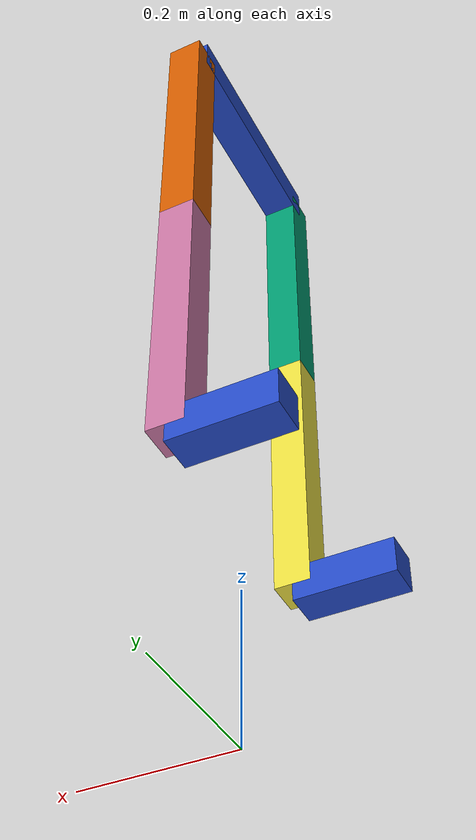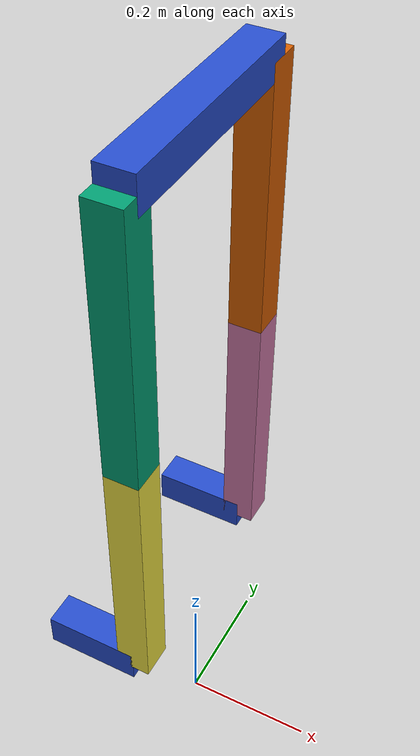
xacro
<?xml version="1.0"?>
<!-- Revolute-Revolute Manipulator -->
<robot name="march" xmlns:xacro="http://www.ros.org/wiki/xacro">
    <!-- An argument that makes sure the march.gazebo is loaded only when launching the simulation and not during build,
            because during build the march_description package can not be found-->
    <xacro:arg name="build" default="false"/>
    <!-- Switch between airgaiting or standing on the ground-->
    <!--Value set to: 'world' fixes the robot to the world-->
    <!--Value set to: 'base_link' makes the robot stand on the ground-->
    <!--Important note: when changing value make sure rviz fixed frame is set to the same value (moveit.rviz)-->
    <xacro:property name="parent_name" value="world"/>

    <!-- Constants for robot dimensions -->
    <xacro:property name="PI" value="3.1415926535897931"/>
    <xacro:property name="mass" value="1"/> <!-- arbitrary value for mass -->
    <xacro:property name="width" value="0.05"/> <!-- Square dimensions (widthxwidth) of beams -->

    <xacro:property name="upper_leg_height" value="${0.39}"/>
    <xacro:property name="upper_leg_mass" value="1.080"/>

    <xacro:property name="lower_leg_height" value="${0.39}"/>
    <xacro:property name="lower_leg_mass" value="1.133"/>

    <xacro:property name="foot_height" value="${0.14*1}"/>
    <xacro:property name="foot_mass" value="0.393"/>

    <xacro:property name="hip_height" value="0.33"/>

    <xacro:property name="hip_rotation_lower_limit" value="${-15*pi/180}"/> <!-- rad -->
    <xacro:property name="hip_rotation_upper_limit" value="${105*pi/180}"/> <!-- rad -->
    <xacro:property name="hip_effort_limit" value="1000.0"/> <!-- Rad -->
    <xacro:property name="hip_velocity_limit" value="1000.0"/> <!-- rad/s -->

    <xacro:property name="knee_rotation_lower_limit" value="${-15*pi/180}"/>
    <xacro:property name="knee_rotation_upper_limit" value="${105*pi/180}"/>
    <xacro:property name="knee_effort_limit" value="1000.0"/>
    <xacro:property name="knee_velocity_limit" value="1000.0"/>

    <xacro:property name="ankle_rotation_lower_limit" value="${-15*pi/180}"/>
    <xacro:property name="ankle_rotation_upper_limit" value="${20*pi/180}"/>
    <xacro:property name="ankle_effort_limit" value="1000.0"/>
    <xacro:property name="ankle_velocity_limit" value="1000.0"/>

    <xacro:property name="hover_height" value="0.3"/>

    <xacro:property name="camera_link" value="0.05"/> <!-- Size of square 'camera' box -->
    <xacro:property name="axel_offset" value="0.05"/> <!-- Space btw top of beam and the each joint -->

    <!-- Import all Gazebo-customization elements, including Gazebo colors -->
    <xacro:unless value="$(arg build)">
        <xacro:include filename="$(find march_description)/urdf/march.gazebo"/>
    </xacro:unless>

    <plugin name="gazebo_ros_control" filename="libgazebo_ros_control.so">
        <robotNamespace>/march</robotNamespace>
    </plugin>

    <!-- Used for fixing robot to Gazebo 'base_link' -->
    <link name="${parent_name}"/>

    <joint name="hip" type="fixed">
        <parent link="${parent_name}"/>
        <child link="hip_bone"/>
        <origin xyz="0 0 ${lower_leg_height+upper_leg_height+hover_height}" rpy="0 0 0"/>
    </joint>

    <joint name="left_hip" type="revolute">
        <parent link="hip_bone"/>
        <child link="upper_leg_left"/>
        <origin xyz="0 ${-hip_height/2} 0" rpy="0 0 0"/>
        <axis xyz="0 1 0"/>
        <limit velocity="${hip_velocity_limit}" effort="${hip_effort_limit}" lower="${hip_rotation_lower_limit}" upper="${hip_rotation_upper_limit}"/>
    </joint>

    <joint name="left_knee" type="revolute">
        <parent link="upper_leg_left"/>
        <child link="lower_leg_left"/>
        <origin xyz="0 0 ${-upper_leg_height}" rpy="0 0 0"/>
        <axis xyz="0 -1 0"/>
        <limit velocity="${knee_velocity_limit}" effort="${knee_effort_limit}" lower="${knee_rotation_lower_limit}" upper="${knee_rotation_upper_limit}"/>
    </joint>

    <joint name="left_ankle" type="revolute">
        <parent link="lower_leg_left"/>
        <child link="foot_left"/>
        <origin xyz="0 0 ${-lower_leg_height}" rpy="0 0 0"/>
        <axis xyz="0 1 0"/>
        <limit velocity="${ankle_velocity_limit}" effort="${ankle_effort_limit}" lower="${ankle_rotation_lower_limit}" upper="${ankle_rotation_upper_limit}"/>
    </joint>

    <joint name="right_hip" type="revolute">
        <parent link="hip_bone"/>
        <child link="upper_leg_right"/>
        <origin xyz="0 ${hip_height/2} 0" rpy="0 0 0"/>
        <axis xyz="0 1 0"/>
        <limit velocity="${hip_velocity_limit}" effort="${hip_effort_limit}" lower="${hip_rotation_lower_limit}" upper="${hip_rotation_upper_limit}"/>
    </joint>

    <joint name="right_knee" type="revolute">
        <parent link="upper_leg_right"/>
        <child link="lower_leg_right"/>
        <origin xyz="0 0 ${-upper_leg_height}" rpy="0 0 0"/>
        <axis xyz="0 -1 0"/>
        <limit velocity="${knee_velocity_limit}" effort="${knee_effort_limit}" lower="${knee_rotation_lower_limit}" upper="${knee_rotation_upper_limit}"/>
    </joint>

    <joint name="right_ankle" type="revolute">
        <parent link="lower_leg_right"/>
        <child link="foot_right"/>
        <origin xyz="0 0 ${-lower_leg_height}" rpy="0 0 0"/>
        <axis xyz="0 1 0"/>
        <limit velocity="${ankle_velocity_limit}" effort="${ankle_effort_limit}" lower="${ankle_rotation_lower_limit}" upper="${ankle_rotation_upper_limit}"/>
    </joint>

    <!-- give colors to some links in gazebo -->
    <gazebo reference="hip_bone">
        <material>Gazebo/Blue</material>
    </gazebo>
    <gazebo reference="foot_left">
        <material>Gazebo/Blue</material>
    </gazebo>
    <gazebo reference="foot_right">
        <material>Gazebo/Blue</material>
    </gazebo>

    <!-- Hip-->
    <link name="hip_bone">
        <visual>
            <origin xyz="0 0 0" rpy="0 0 0"/>
            <geometry>
                <box size="${width} ${hip_height} ${width}"/>
            </geometry>
        </visual>

        <inertial>
            <origin xyz="0 0 0" rpy="0 0 0"/>
            <mass value="${mass}"/>
            <inertia
                    ixx="${mass / 12.0 * (width*width + lower_leg_height*lower_leg_height)}" ixy="0.0" ixz="0.0"
                    iyy="${mass / 12.0 * (lower_leg_height*lower_leg_height + width*width)}" iyz="0.0"
                    izz="${mass / 12.0 * (width*width + width*width)}"/>
        </inertial>
    </link>

    <!-- Upper Leg Left-->
    <link name="upper_leg_left">
        <visual>
            <origin xyz="0 0 ${-upper_leg_height/2}" rpy="0 0 0"/>
            <geometry>
                <box size="${width} ${width} ${upper_leg_height}"/>
            </geometry>
        </visual>

        <inertial>
            <origin xyz="0 0 ${-upper_leg_height/2}" rpy="0 0 0"/>
            <mass value="${upper_leg_mass}"/>
            <inertia
                    ixx="${mass / 12.0 * (width*width + upper_leg_height*upper_leg_height)}" ixy="0.0" ixz="0.0"
                    iyy="${mass / 12.0 * (upper_leg_height*upper_leg_height + width*width)}" iyz="0.0"
                    izz="${mass / 12.0 * (width*width + width*width)}"/>
        </inertial>
    </link>

    <!-- Lower Leg Left -->
    <link name="lower_leg_left">
        <visual>
            <origin xyz="0 0 ${-lower_leg_height/2}" rpy="0 0 0"/>
            <geometry>
                <box size="${width} ${width} ${lower_leg_height}"/>
            </geometry>
        </visual>

        <inertial>
            <origin xyz="0 0 ${-lower_leg_height/2}" rpy="0 0 0"/>
            <mass value="${lower_leg_mass}"/>
            <inertia
                    ixx="${mass / 12.0 * (width*width + lower_leg_height*lower_leg_height)}" ixy="0.0" ixz="0.0"
                    iyy="${mass / 12.0 * (lower_leg_height*lower_leg_height + width*width)}" iyz="0.0"
                    izz="${mass / 12.0 * (width*width + width*width)}"/>
        </inertial>
    </link>

    <!-- Foot Left -->
    <link name="foot_left">
        <visual>
            <origin xyz="${-foot_height/2} 0 0" rpy="0 0 0"/>
            <geometry>
                <box size="${foot_height} ${width} ${width}"/>
            </geometry>
        </visual>

        <inertial>
            <origin xyz="${-foot_height/2} 0 0" rpy="0 0 0"/>
            <mass value="${foot_mass}"/>
            <inertia
                    ixx="${mass / 12.0 * (width*width + lower_leg_height*lower_leg_height)}" ixy="0.0" ixz="0.0"
                    iyy="${mass / 12.0 * (lower_leg_height*lower_leg_height + width*width)}" iyz="0.0"
                    izz="${mass / 12.0 * (width*width + width*width)}"/>
        </inertial>
        <collision>
            <geometry>
                <box size="${foot_height} ${width} ${width}"/>
            </geometry>
        </collision>
    </link>

    <!-- Upper Leg Right-->
    <link name="upper_leg_right">
        <visual>
            <origin xyz="0 0 ${-upper_leg_height/2}" rpy="0 0 0"/>
            <geometry>
                <box size="${width} ${width} ${upper_leg_height}"/>
            </geometry>
        </visual>

        <inertial>
            <origin xyz="0 0 ${-upper_leg_height/2}" rpy="0 0 0"/>
            <mass value="${upper_leg_mass}"/>
            <inertia
                    ixx="${mass / 12.0 * (width*width + upper_leg_height*upper_leg_height)}" ixy="0.0" ixz="0.0"
                    iyy="${mass / 12.0 * (upper_leg_height*upper_leg_height + width*width)}" iyz="0.0"
                    izz="${mass / 12.0 * (width*width + width*width)}"/>
        </inertial>
    </link>

    <!-- Lower Leg Right -->
    <link name="lower_leg_right">
        <visual>
            <origin xyz="0 0 ${-lower_leg_height/2}" rpy="0 0 0"/>
            <geometry>
                <box size="${width} ${width} ${lower_leg_height}"/>
            </geometry>
        </visual>

        <inertial>
            <origin xyz="0 0 ${-lower_leg_height/2}" rpy="0 0 0"/>
            <mass value="${lower_leg_mass}"/>
            <inertia
                    ixx="${mass / 12.0 * (width*width + lower_leg_height*lower_leg_height)}" ixy="0.0" ixz="0.0"
                    iyy="${mass / 12.0 * (lower_leg_height*lower_leg_height + width*width)}" iyz="0.0"
                    izz="${mass / 12.0 * (width*width + width*width)}"/>
        </inertial>
    </link>

    <!-- Foot Right -->
    <link name="foot_right">
        <visual>
            <origin xyz="${-foot_height/2} 0 0" rpy="0 0 0"/>
            <geometry>
                <box size="${foot_height} ${width} ${width}"/>
            </geometry>
        </visual>

        <inertial>
            <origin xyz="${-foot_height/2} 0 0" rpy="0 0 0"/>
            <mass value="${mass}"/>
            <inertia
                    ixx="${mass / 12.0 * (width*width + lower_leg_height*lower_leg_height)}" ixy="0.0" ixz="0.0"
                    iyy="${mass / 12.0 * (lower_leg_height*lower_leg_height + width*width)}" iyz="0.0"
                    izz="${mass / 12.0 * (width*width + width*width)}"/>
        </inertial>
        <collision>
            <geometry>
                <box size="${foot_height} ${width} ${width}"/>
            </geometry>
        </collision>
    </link>

    <!-- ROS Control plugin for Gazebo -->
    <transmission name="left_hip">
        <type>transmission_interface/SimpleTransmission</type>
        <joint name="left_hip">
            <hardwareInterface>hardware_interface/EffortJointInterface</hardwareInterface>
        </joint>
        <actuator name="left_hip_motor">
            <hardwareInterface>hardware_interface/EffortJointInterface</hardwareInterface>
            <mechanicalReduction>1</mechanicalReduction>
        </actuator>
    </transmission>

    <transmission name="left_knee">
        <type>transmission_interface/SimpleTransmission</type>
        <joint name="left_knee">
            <hardwareInterface>hardware_interface/EffortJointInterface</hardwareInterface>
        </joint>
        <actuator name="left_knee_motor">
            <hardwareInterface>hardware_interface/EffortJointInterface</hardwareInterface>
            <mechanicalReduction>1</mechanicalReduction>
        </actuator>
    </transmission>

    <transmission name="left_ankle">
        <type>transmission_interface/SimpleTransmission</type>
        <joint name="left_ankle">
            <hardwareInterface>hardware_interface/EffortJointInterface</hardwareInterface>
        </joint>
        <actuator name="left_ankle_motor">
            <hardwareInterface>hardware_interface/EffortJointInterface</hardwareInterface>
            <mechanicalReduction>1</mechanicalReduction>
        </actuator>
    </transmission>

    <transmission name="right_hip">
        <type>transmission_interface/SimpleTransmission</type>
        <joint name="right_hip">
            <hardwareInterface>hardware_interface/EffortJointInterface</hardwareInterface>
        </joint>
        <actuator name="right_hip_motor">
            <hardwareInterface>hardware_interface/EffortJointInterface</hardwareInterface>
            <mechanicalReduction>1</mechanicalReduction>
        </actuator>
    </transmission>

    <transmission name="right_knee">
        <type>transmission_interface/SimpleTransmission</type>
        <joint name="right_knee">
            <hardwareInterface>hardware_interface/EffortJointInterface</hardwareInterface>
        </joint>
        <actuator name="right_knee_motor">
            <hardwareInterface>hardware_interface/EffortJointInterface</hardwareInterface>
            <mechanicalReduction>1</mechanicalReduction>
        </actuator>
    </transmission>

    <transmission name="right_ankle">
        <type>transmission_interface/SimpleTransmission</type>
        <joint name="right_ankle">
            <hardwareInterface>hardware_interface/EffortJointInterface</hardwareInterface>
        </joint>
        <actuator name="right_ankle_motor">
            <hardwareInterface>hardware_interface/EffortJointInterface</hardwareInterface>
            <mechanicalReduction>1</mechanicalReduction>
        </actuator>
    </transmission>

</robot>
